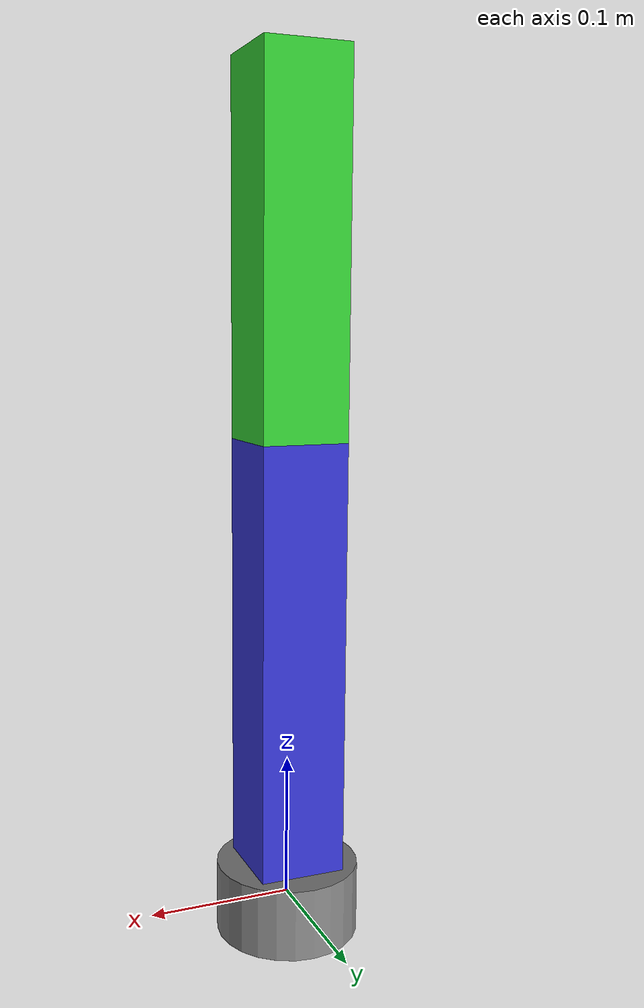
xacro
<?xml version="1.0"?>
<robot name="simple_arm" xmlns:xacro="http://www.ros.org/wiki/xacro">

  <!-- Xacro properties: named constants, referenced below with ${...}.
       Changing a length here updates every place that uses it, instead
       of hunting down repeated literal numbers. -->
  <xacro:property name="link1_length" value="0.3"/>
  <xacro:property name="link2_length" value="0.25"/>
  <xacro:property name="link_radius" value="0.03"/>
  <xacro:property name="link_mass" value="0.5"/>

  <!-- base_link: the root of the kinematic tree. Every other link
       traces back to this one through a chain of joints. -->
  <link name="base_link">
    <visual>
      <geometry><cylinder radius="0.05" length="0.05"/></geometry>
      <material name="gray"><color rgba="0.5 0.5 0.5 1"/></material>
    </visual>
    <collision>
      <geometry><cylinder radius="0.05" length="0.05"/></geometry>
    </collision>
    <inertial>
      <mass value="1.0"/>
      <inertia ixx="0.01" ixy="0" ixz="0" iyy="0.01" iyz="0" izz="0.01"/>
    </inertial>
  </link>

  <link name="link1">
    <visual>
      <!-- Offset the visual geometry so the box extends outward from the
           joint origin rather than being centered on it — otherwise half
           the link would visually overlap its parent. -->
      <origin xyz="0 0 ${link1_length/2}" rpy="0 0 0"/>
      <geometry><box size="${link_radius*2} ${link_radius*2} ${link1_length}"/></geometry>
      <material name="blue"><color rgba="0.2 0.2 0.8 1"/></material>
    </visual>
    <collision>
      <origin xyz="0 0 ${link1_length/2}" rpy="0 0 0"/>
      <geometry><box size="${link_radius*2} ${link_radius*2} ${link1_length}"/></geometry>
    </collision>
    <inertial>
      <origin xyz="0 0 ${link1_length/2}" rpy="0 0 0"/>
      <mass value="${link_mass}"/>
      <inertia ixx="0.01" ixy="0" ixz="0" iyy="0.01" iyz="0" izz="0.005"/>
    </inertial>
  </link>

  <!-- joint1: connects base_link -> link1, rotates around Z (yaw at the
       base — like a turntable the rest of the arm sits on). -->
  <joint name="joint1" type="revolute">
    <parent link="base_link"/>
    <child link="link1"/>
    <origin xyz="0 0 0.025" rpy="0 0 0"/>
    <axis xyz="0 0 1"/>
    <limit lower="-3.14159" upper="3.14159" effort="10.0" velocity="1.0"/>
  </joint>

  <link name="link2">
    <visual>
      <origin xyz="0 0 ${link2_length/2}" rpy="0 0 0"/>
      <geometry><box size="${link_radius*2} ${link_radius*2} ${link2_length}"/></geometry>
      <material name="green"><color rgba="0.2 0.8 0.2 1"/></material>
    </visual>
    <collision>
      <origin xyz="0 0 ${link2_length/2}" rpy="0 0 0"/>
      <geometry><box size="${link_radius*2} ${link_radius*2} ${link2_length}"/></geometry>
    </collision>
    <inertial>
      <origin xyz="0 0 ${link2_length/2}" rpy="0 0 0"/>
      <mass value="${link_mass * 0.7}"/>
      <inertia ixx="0.005" ixy="0" ixz="0" iyy="0.005" iyz="0" izz="0.002"/>
    </inertial>
  </link>

  <!-- joint2: connects link1 -> link2, rotates around Y (pitch — like an
       elbow), positioned at the far end of link1 (hence the Z offset
       equal to link1_length). -->
  <joint name="joint2" type="revolute">
    <parent link="link1"/>
    <child link="link2"/>
    <origin xyz="0 0 ${link1_length}" rpy="0 0 0"/>
    <axis xyz="0 1 0"/>
    <limit lower="-2.0" upper="2.0" effort="10.0" velocity="1.0"/>
  </joint>

</robot>
